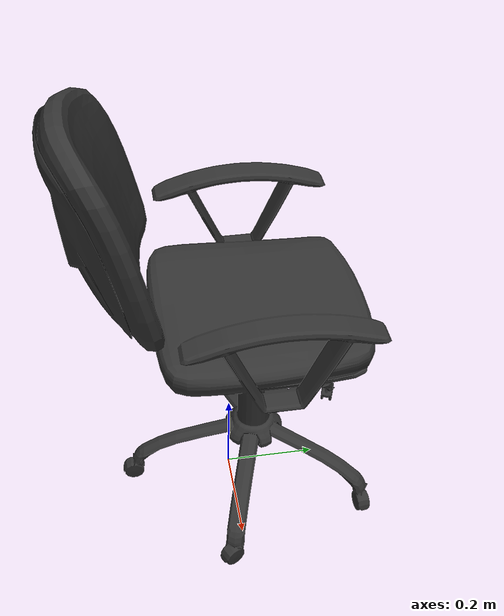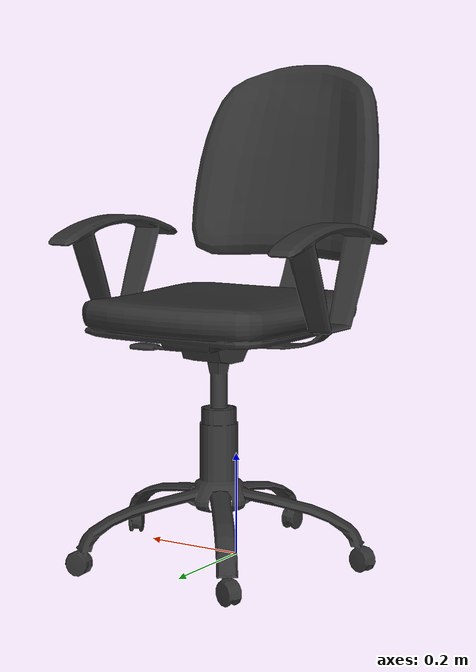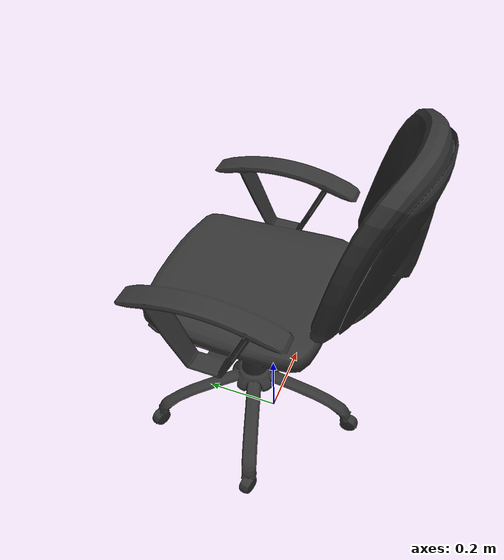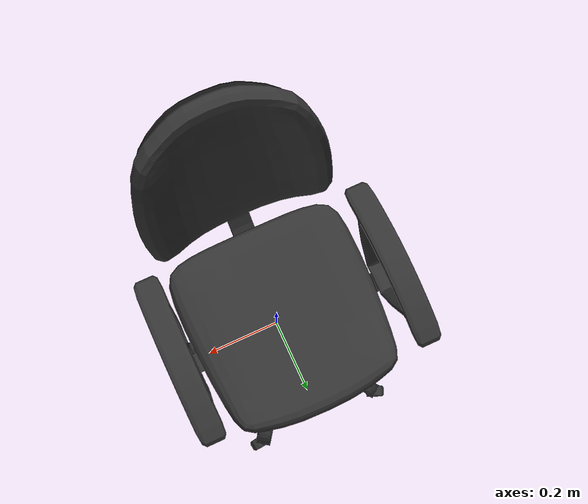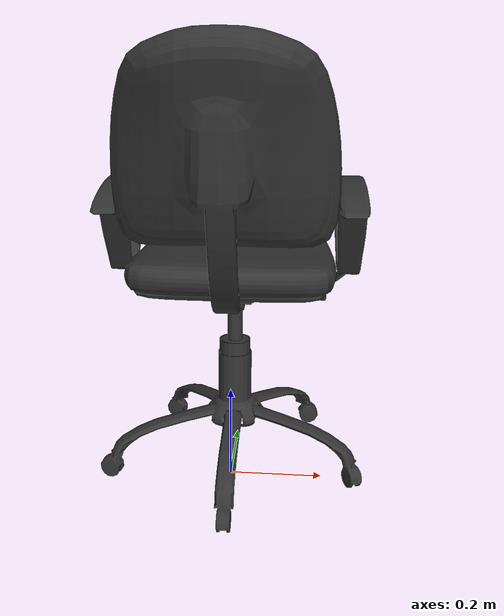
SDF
<?xml version="1.0" ?>
<sdf version="1.5">
  <model name="office_chair">
    <link name="link">
      <pose>0 0 0 0 0 0</pose>
      <collision name="collision">
        <geometry>
          <mesh>
            <uri>model://office_chair/meshes/model.dae</uri>
          </mesh>
        </geometry>
      </collision>
      <visual name="visual">
        <geometry>
          <mesh>
            <uri>model://office_chair/meshes/model.dae</uri>
          </mesh>
        </geometry>
      </visual>
    </link>
    <static>1</static>
  </model>
</sdf>
